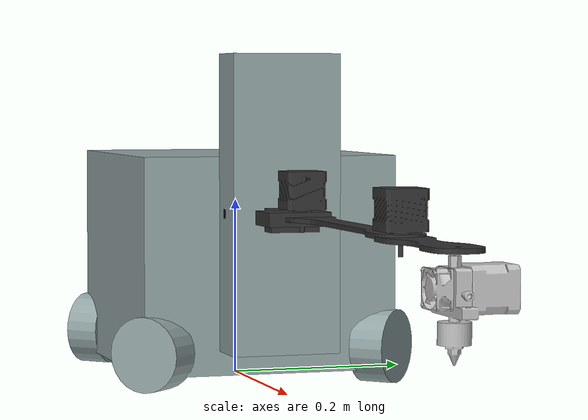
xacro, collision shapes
<?xml version="1.0"?>

<robot xmlns:xacro="http://www.ros.org/wiki/xacro"
	xmlns:sensor="http://playerstage.sourceforge.net/gazebo/xmlschema/#sensor"
	xmlns:controller="http://playerstage.sourceforge.net/gazebo/xmlschema/#controller"
	xmlns:interface="http://playerstage.sourceforge.net/gazebo/xmlschema/#interface"
	name="3drobot_xacro">

	<!--Color description.-->
	<material name="gray">
	<color rgba="0.58 0.65 0.65 1"/>
	</material>

	<material name="gray2">
	<color rgba="0.58 0.65 0.65 1"/>
	</material>

	<!--Importations-->
	<xacro:include filename="$(find robot_description)/urdf/3drobot.gazebo" />
	<xacro:macro name="default_inertial" params="mass">
               <inertial>
                       <mass value="${mass}" />
                       <inertia ixx="1.0" ixy="0.0" ixz="0.0"
                                iyy="1.0" iyz="0.0"
                                izz="1.0" />
               </inertial>
	</xacro:macro>

  	<xacro:macro name="transmission_block" params="joint_name">
		<transmission name="tran1">
			<type>transmission_interface/SimpleTransmission</type>
			<joint name="${joint_name}">
				<hardwareInterface>hardware_interface/EffortJointInterface</hardwareInterface>

			</joint>
			<actuator name="motor1">
    			<mechanicalReduction>1</mechanicalReduction>
    			<hardwareInterface>hardware_interface/EffortJointInterface</hardwareInterface>
  			</actuator>
		</transmission>
	</xacro:macro>

	<!--Links definition.-->
	<link name="base_link">
   		<visual>
			<geometry>
      			<mesh filename="package://robot_description/meshes/base.STL" scale="0.001 0.001 0.001"/>
     		</geometry>
			<origin rpy="0 0 0" xyz="-0.14364 -0.14364 0.0157"/>
			<material name="gray"/>
   		</visual>
		<collision>
			<geometry>
				<box size="0.287279 0.287279 0.239"/>
			</geometry>
			<origin rpy="0 0 0" xyz="0 0 0.135"/>
		</collision>
		<xacro:default_inertial mass="20.0"/>
 	</link>

 	<link name="wheel_1">
   		<visual>
     		<geometry>
       			<mesh filename="package://robot_description/meshes/omniwheel.STL" scale="0.001 0.001 0.001"/>
     		</geometry>
			<origin rpy="1.5708 0 0" xyz="-0.046275 0.019675 -0.046275"/>
			<material name="gray2"/>>
		</visual>
		<collision>
			<geometry>

				<cylinder length="0.03935" radius="0.041275"/>
			</geometry>
			<origin rpy="1.5708 0 0" xyz="0 0 0"/>
		</collision>
		<xacro:default_inertial mass="0.127"/>
 	</link>

 	<link name="wheel_2">
   		<visual>
     		<geometry>
       			<mesh filename="package://robot_description/meshes/omniwheel.STL" scale="0.001 0.001 0.001"/>
     		</geometry>
			<origin rpy="1.5708 0 0" xyz="-0.046275 0.019675 -0.046275"/>
			<material name="gray2"/>>
		</visual>
		<collision>
			<geometry>
       		  <cylinder length="0.03935" radius="0.041275"/>
			</geometry>
			<origin rpy="1.5708 0 0" xyz="0 0 0"/>
		</collision>
		<xacro:default_inertial mass="0.127"/>
 	</link>

 	<link name="wheel_3">
   		<visual>
     		<geometry>
       			<mesh filename="package://robot_description/meshes/omniwheel.STL" scale="0.001 0.001 0.001"/>
     		</geometry>
			<origin rpy="1.5708 0 0" xyz="-0.046275 0.019675 -0.046275"/>
			<material name="gray2"/>>
		</visual>
		<collision>
			<geometry>
       			  <cylinder length="0.03935" radius="0.041275"/>
			</geometry>
			<origin rpy="1.5708 0 0" xyz="0 0 0"/>
		</collision>
		<xacro:default_inertial mass="0.127"/>
 	</link>

 	<link name="wheel_4">
   		<visual>
     		<geometry>
       			<mesh filename="package://robot_description/meshes/omniwheel.STL" scale="0.001 0.001 0.001"/>
     		</geometry>
			<origin rpy="1.5708 0 0" xyz="-0.046275 0.019675 -0.046275"/>
			<material name="gray2"/>>
		</visual>
		<collision>
			<geometry>
       			<cylinder length="0.03935" radius="0.041275"/>
			</geometry>
			<origin rpy="1.5708 0 0" xyz="0 0 0"/>
		</collision>
		<xacro:default_inertial mass="0.127"/>
 	</link>

	  	<link name="z_axis">
   		<visual>
     		<geometry>
       			<mesh filename="package://robot_description/meshes/ejez.STL" scale="0.001 0.001 0.001"/>
     		</geometry>
			<origin rpy="0 0 0" xyz="-0.01 -0.05976 0"/>
			<material name="gray2"/>>
		</visual>
		<collision>
			<geometry>
       			<box size="0.0565 0.119526 0.323"/>
			</geometry>
			<origin rpy="0 0 0" xyz="0.027 0 0.163"/>
		</collision>
		<xacro:default_inertial mass="0.19422"/>
 	</link>

	<link name="imu_link">
		<visual>
			<geometry>
				<mesh filename="package://robot_description/meshes/imu.STL" scale="0.001 0.001 0.001"/>
			</geometry>
			<origin rpy="0 0 0" xyz="0 0 0"/>
			<material name="gray2"/>>
		</visual>

		<collision>
			<geometry>
       			<box size="0.04 0.02 0.001"/>
			</geometry>
			<origin rpy="0 0 0" xyz="0 0 0"/>
		</collision>

		<xacro:default_inertial mass="0.00218"/>
 	</link>

  <link
    name="support">
	<xacro:default_inertial mass="0.012"/>
    <visual>
      <origin
        xyz="-0.068 -0.0599 0.006"
        rpy="1.5708 0 1.5708" />
      <geometry>
        <mesh
          filename="package://robot_description/meshes/Soporte_hotend.STL" scale="0.001 0.001 0.001"/>
      </geometry>
      <material
        name="">
        <color
          rgba="0.203921568627451 0.203921568627451 0.203921568627451 1" />
      </material>
    </visual>
    <collision>
      <origin
        xyz="-0.068 -0.0599 0.006"
        rpy="1.5708 0 1.5708" />
      <geometry>
        <mesh
          filename="package://robot_description/meshes/Soporte_hotend.STL" scale="0.001 0.001 0.001"/>
      </geometry>
    </collision>
  </link>

  <link
    name="base_link_b">
    <inertial>
      <origin
        xyz="0.000356203093126534 -0.0129880878092186 4.16333634234434E-17"
        rpy="0 0 0" />
      <mass
        value="0.0367636504591507" />
      <inertia
        ixx="1.59327646624515E-05"
        ixy="-9.03565121280128E-10"
        ixz="6.95903156332929E-22"
        iyy="7.98367062317143E-06"
        iyz="1.73674612890011E-22"
        izz="2.21410708857523E-05" />
    </inertial>
    <visual>
      <origin
        xyz="0 0 0"
        rpy="0 0 -1.5708" />
      <geometry>
        <mesh
          filename="package://robot_description/meshes/base_link_b.STL" />
      </geometry>
      <material
        name="">
        <color
          rgba="0.203921568627451 0.203921568627451 0.203921568627451 1" />
      </material>
    </visual>
    <collision>
      <origin
        xyz="0 0 0"
        rpy="0 0 0" />
      <geometry>
        <mesh
          filename="package://robot_description/meshes/base_link_b.STL" />
      </geometry>
    </collision>
  </link>

  <link
    name="Link1_b">
    <inertial>
      <origin
        xyz="0.0138384761081313 1.18825325973182E-05 0.0239635597028051"
        rpy="0 0 0" />
      <mass
        value="0.258108782462969" />
      <inertia
        ixx="3.98859073664036E-05"
        ixy="-1.52473138522623E-07"
        ixz="-6.28891691778649E-09"
        iyy="0.000216808614679193"
        iyz="1.12116084216567E-12"
        izz="0.000248722761965318" />
    </inertial>
    <visual>
      <origin
        xyz="-0.021 -0.021 -0.322"
        rpy="0 0 0" />
      <geometry>
        <mesh
          filename="package://robot_description/meshes/Link1_b.STL" scale="0.001 0.001 0.001"/>
      </geometry>
      <material
        name="">
        <color
          rgba="0.203921568627451 0.203921568627451 0.203921568627451 1" />
      </material>
    </visual>
    <collision>
      <origin
        xyz="-0.021 -0.021 -0.322"
        rpy="0 0 0" />
      <geometry>
        <mesh
          filename="package://robot_description/meshes/Link1_b.STL" scale="0.001 0.001 0.001"/>
      </geometry>
    </collision>
  </link>

  <link
    name="Link2_b">
    <inertial>
      <origin
        xyz="0.013845350702378 1.19792284548059E-05 0.0239635596975925"
        rpy="0 0 0" />
      <mass
        value="0.258108782397829" />
      <inertia
        ixx="3.98859072753747E-05"
        ixy="-1.524410962612E-07"
        ixz="6.28891489352419E-09"
        iyy="0.000216808614766749"
        iyz="4.29898332195258E-12"
        izz="0.000248722761962003" />
    </inertial>
    <visual>
      <origin
        xyz="-0.021 -0.021 0"
        rpy="0 0 0" />
      <geometry>
        <mesh
          filename="package://robot_description/meshes/Link2_b.STL" scale="0.001 0.001 0.001"/>
      </geometry>
      <material
        name="">
        <color
          rgba="0.203921568627451 0.203921568627451 0.203921568627451 1" />
      </material>
    </visual>
    <collision>
      <origin
        xyz="-0.021 -0.021 0"
        rpy="0 0 0" />
      <geometry>
        <mesh
          filename="package://robot_description/meshes/Link2_b.STL" scale="0.001 0.001 0.001"/>
      </geometry>
    </collision>
  </link>

  <link
    name="Extrusor">
    <inertial>
      <origin
        xyz="0.00134982001823841 0.0198829413157027 -0.0331588621043219"
        rpy="0 0 0" />
      <mass
        value="0.85514562651405" />
      <inertia
        ixx="0.000148143226540988"
        ixy="-6.20944338766881E-08"
        ixz="1.80900003371049E-08"
        iyy="0.000262030279718385"
        iyz="-2.42623150210062E-09"
        izz="0.000167567646225701" />
    </inertial>
    <visual>
      <origin
        xyz="0 0 0"
        rpy="0 0 0" />
      <geometry>
        <mesh
          filename="package://robot_description/meshes/Extrusor.STL" />
      </geometry>
      <material
        name="">
        <color
          rgba="0.752941176470588 0.752941176470588 0.752941176470588 1" />
      </material>
    </visual>
    <collision>
      <origin
        xyz="0 0 0"
        rpy="0 0 0" />
      <geometry>
        <mesh
          filename="package://robot_description/meshes/Extrusor.STL" />
      </geometry>
    </collision>
  </link>

	<!--Joints definition.-->

	<joint
		name="Joint0_b"
		type="fixed">
		<origin
		xyz="0.025 0.002 0.0225"
		rpy="0 0 0" />
		<parent
		link="support" />
		<child
		link="base_link_b" />
		<axis
		xyz="0 0 0" />
	</joint>

	<joint
		name="Joint1_b"
		type="continuous">
		<origin
		xyz="0 0 0"
		rpy="0 0 0" />
		<parent
		link="base_link_b" />
		<child
		link="Link1_b" />
		<axis
		xyz="0 0 1" />
	</joint>

	<joint
		name="Joint2_b"
		type="continuous">
		<origin
		xyz="0.280 0.00015341 -0.005"
		rpy="0 0 0" />
		<parent
		link="Link1_b" />
		<child
		link="Link2_b" />
		<axis
		xyz="0 0 1" />
	</joint>

	<joint
		name="Joint3_b"
		type="fixed">
		<origin
		xyz="0.140 0.00015341 0"
		rpy="0 0 0" />
		<parent
		link="Link2_b" />
		<child
		link="Extrusor" />
		<axis
		xyz="0 0 0" />
	</joint>

	<joint name="base_to_wheel1" type="continuous">
		<parent link="base_link"/>
		<child link="wheel_1"/>
		<origin rpy="0 0 -0.7854" xyz="0.13145 0.13145 0.04115"/>
		<axis xyz="0 1 0" />
	</joint>

	<joint name="base_to_wheel2" type="continuous">
		<parent link="base_link"/>
		<child link="wheel_2"/>
		<origin rpy="0 0 0.7854" xyz="-0.13145 0.13145 0.04115"/>
		<axis xyz="0 1 0" />
	</joint>

	<joint name="base_to_wheel3" type="continuous">
		<parent link="base_link"/>
		<child link="wheel_3"/>
		<origin rpy="0 0 2.3562" xyz="-0.13145 -0.13145 0.04115"/>
		<axis xyz="0 1 0" />
	</joint>

	<joint name="base_to_wheel4" type="continuous">
		<parent link="base_link"/>
		<child link="wheel_4"/>
		<origin rpy="0 0 -2.3562" xyz="0.13145 -0.13145 0.04115"/>
		<axis xyz="0 1 0" />
	</joint>

	<joint name="base_to_zaxis" type="fixed">
		<parent link="base_link"/>
		<child link="z_axis"/>
		<origin rpy="0 0 0" xyz="0.14364 0 0.04115"/>
	</joint>

	<joint name="imu_joint" type="fixed">
		<parent link="base_link"/>
		<child link="imu_link"/>
		<origin rpy="0 0 0" xyz="0 0 0.079"/>
	</joint>

	<joint name="zaxis_to_support" type="prismatic">
		<parent link="z_axis"/>
		<child link="support"/>
		<origin rpy="0 0 0" xyz="0.075 0 -0.04115"/>
		<limit effort="10.0" lower="0.08" upper="0.26" velocity="0.001"/>
		<axis xyz="0 0 1" />
	</joint>

  	<xacro:transmission_block joint_name="Joint1_b"/>
	<xacro:transmission_block joint_name="Joint2_b"/>

	<gazebo>
		<plugin name="gazebo_ros_control" filename="libgazebo_ros_control.so">
			<robotNamespace>robot1</robotNamespace>
			<robotSimType>gazebo_ros_control/DefaultRobotHWSim</robotSimType>
		</plugin>
  	</gazebo>

	<!-- Drive controller -->
	<gazebo>
		<plugin name="omni_steering" filename="libgazebo_ros_planar_move.so">
			<commandTopic>cmd_vel</commandTopic>
			<odometrytopic>odom</odometrytopic>
			<odometryFrame>odom</odometryFrame>
			<odometryRate>50.0</odometryRate>
			<robotBaseFrame>base_link</robotBaseFrame>
			<publishTF>false</publishTF>
		</plugin>
	</gazebo>

</robot>
